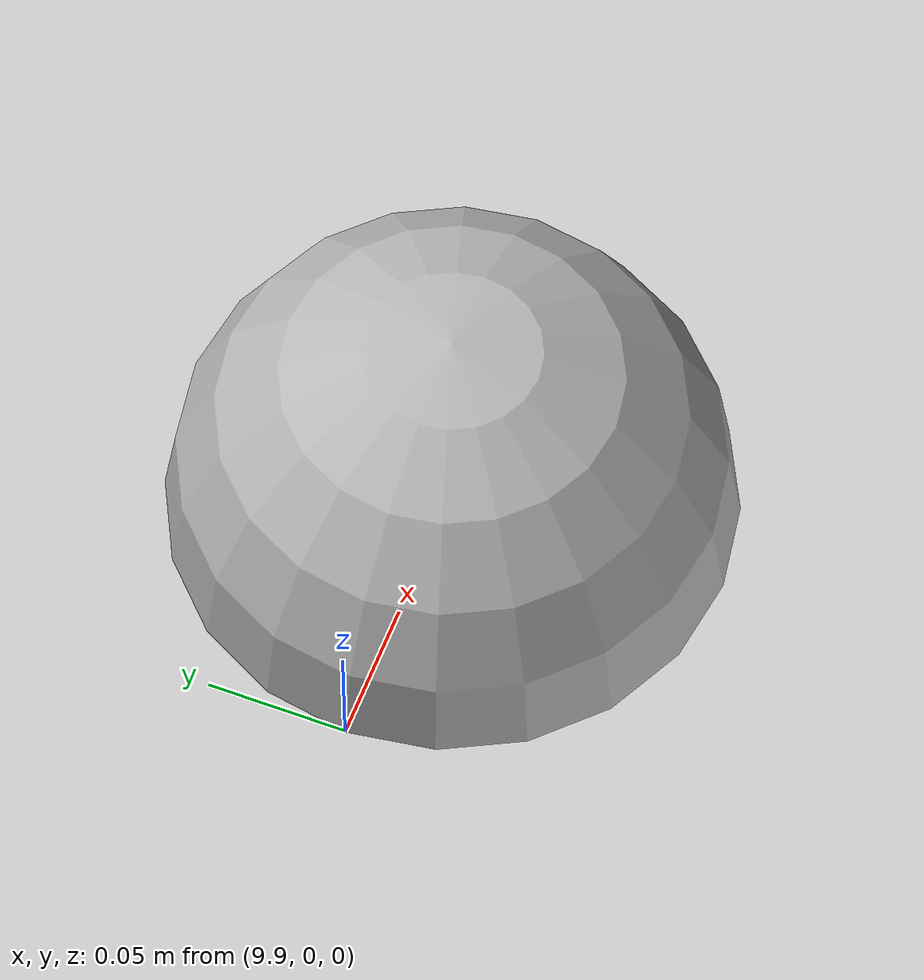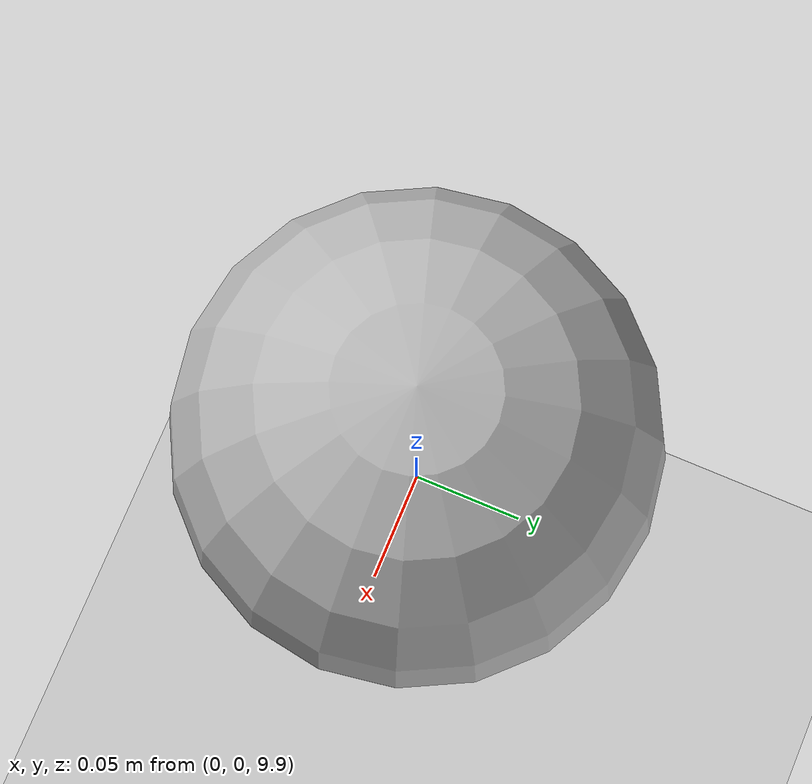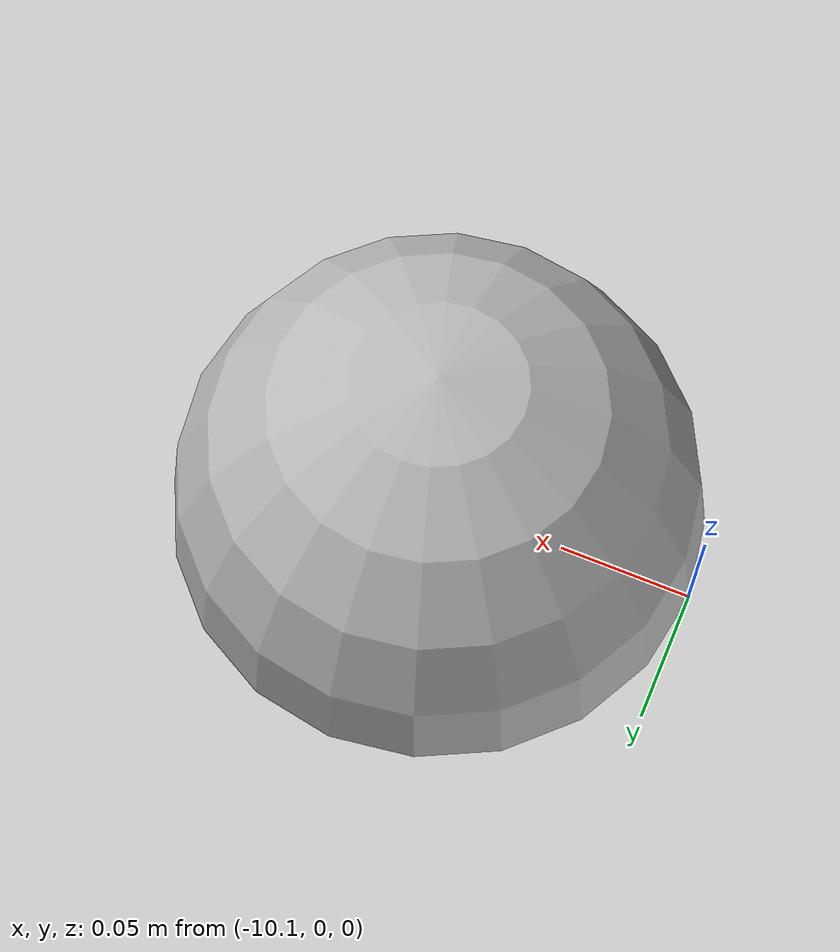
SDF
<?xml version="1.0"?>
<sdf version="1.5">
  <world name="default">
    <!-- A global light source -->
    <include>
      <uri>model://sun</uri>
    </include>
    <!-- A ground plane -->
    <include>
      <uri>model://ground_plane</uri>
    </include>

    <model name="offset">
      <static>1</static>
      <pose>10 20 30 0.5 1 1.5</pose>
    </model>

    <!-- Anchor 0 -->
    <include>
      <name>uwb_anchor_0</name>
      <uri>model://uwb_anchor_offset</uri>
      <pose>10 0 0 0 0 0</pose>
    </include>
    <!-- Anchor 1 -->
    <include>
      <name>uwb_anchor_1</name>
      <uri>model://uwb_anchor_offset</uri>
      <pose>0 10 0 0 0 0</pose>
    </include>
    <!-- Anchor 2 -->
    <include>
      <name>uwb_anchor_2</name>
      <uri>model://uwb_anchor_offset</uri>
      <pose>-10 0 0 0 0 0</pose>
    </include>
    <!-- Anchor 3 -->
    <include>
      <name>uwb_anchor_3</name>
      <uri>model://uwb_anchor_offset</uri>
      <pose>0 -10 0 0 0 0</pose>
    </include>
    <!-- Anchor 4 -->
    <include>
      <name>uwb_anchor_4</name>
      <uri>model://uwb_anchor_offset</uri>
      <pose>0 0 10 0 0 0</pose>
    </include>

    <physics name='default_physics' default='0' type='ode'>
      <gravity>0 0 -9.8066</gravity>
      <ode>
        <solver>
          <type>quick</type>
          <iters>10</iters>
          <sor>1.3</sor>
          <use_dynamic_moi_rescaling>0</use_dynamic_moi_rescaling>
        </solver>
        <constraints>
          <cfm>0</cfm>
          <erp>0.2</erp>
          <contact_max_correcting_vel>100</contact_max_correcting_vel>
          <contact_surface_layer>0.001</contact_surface_layer>
        </constraints>
      </ode>
      <max_step_size>0.004</max_step_size>
      <real_time_factor>1</real_time_factor>
      <real_time_update_rate>250</real_time_update_rate>
      <magnetic_field>6.0e-6 2.3e-5 -4.2e-5</magnetic_field>
    </physics>
  </world>
</sdf>

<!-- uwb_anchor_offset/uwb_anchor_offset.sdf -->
<sdf version='1.6'>
  <model name='uwb_anchor_offset'>
    <static>1</static>
    <pose>0 0 0 0 0 0</pose>
    <link name="uwb_anchor_head">
      <visual name='uwb_anchor_head_visual'>
        <pose>0 0 0 0 0 0</pose>
        <geometry>
          <sphere>
            <radius>0.1 0.1 0.1</radius>
          </sphere>
        </geometry>
      </visual>
    </link>
    <plugin name="gazebo_ros_uwb" filename="libros2_px4_gazebo_uwb.so">
      <link_name>uwb_anchor_head</link_name>
      <update_rate>20</update_rate>
      <reference_model_name>offset</reference_model_name>
    </plugin>
  </model>
</sdf>
